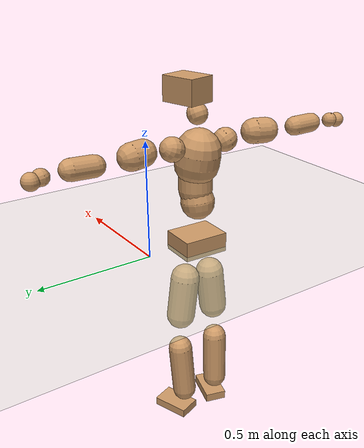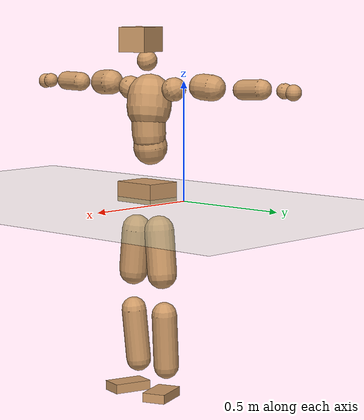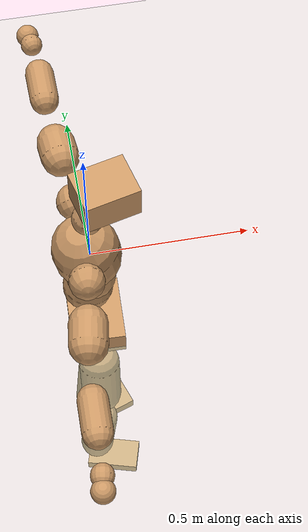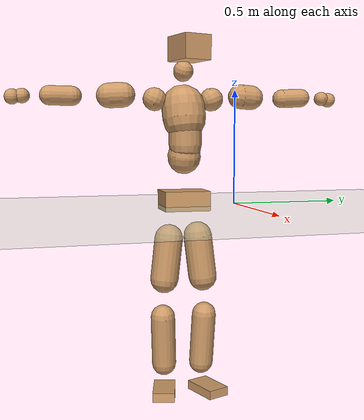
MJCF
<mujoco model="humanoid">
  <compiler coordinate="local" angle="radian"/>
  <default>
    <joint damping="0.0" armature="0.01" stiffness="0.0" limited="true"/>
    <geom conaffinity="1" condim="3" contype="7" margin="0.001" rgba="0.8 0.6 .4 1"/>
  </default>
  <asset>
    <texture type="skybox" builtin="gradient" rgb1=".4 .5 .6" rgb2="0 0 0" width="100" height="100"/>
    <texture builtin="flat" height="1278" mark="cross" markrgb="1 1 1" name="texgeom" random="0.01" rgb1="0.8 0.6 0.4" rgb2="0.8 0.6 0.4" type="cube" width="127"/>
    <texture builtin="checker" height="100" name="texplane" rgb1="0 0 0" rgb2="0.8 0.8 0.8" type="2d" width="100"/>
    <material name="MatPlane" reflectance="0.5" shininess="1" specular="1" texrepeat="60 60" texture="texplane"/>
    <material name="geom" texture="texgeom" texuniform="true"/>
  </asset>
  <worldbody>
    <light cutoff="100" diffuse="1 1 1" dir="-0 0 -1.3" directional="true" exponent="1" pos="0 0 1.3" specular=".1 .1 .1"/>
    <geom conaffinity="1" condim="3" name="floor" pos="0 0 0" rgba="0.8 0.9 0.8 1" size="100 100 .2" type="plane" material="MatPlane"/>
    <body name="Pelvis" pos="-0.0054 -0.2302 0.0285">
      <freejoint name="Pelvis"/>
      <geom type="box" contype="1" conaffinity="1" density="5359.375259" pos="-0.0123 0.0004 -0.0078" size="0.0795 0.1 0.0427" quat="0.9999 0.0000 0.0000 -0.0157" name="Pelvis"/>
      <body name="L_Hip" pos="-0.0198 0.0556 -0.0778">
        <joint name="L_Hip_x" type="hinge" pos="0 0 0" axis="1 0 0" stiffness="1600" damping="160" armature="0.02" range="-180.0000 180.0000"/>
        <joint name="L_Hip_y" type="hinge" pos="0 0 0" axis="0 1 0" stiffness="1600" damping="160" armature="0.02" range="-180.0000 180.0000"/>
        <joint name="L_Hip_z" type="hinge" pos="0 0 0" axis="0 0 1" stiffness="1600" damping="160" armature="0.02" range="-180.0000 180.0000"/>
        <geom type="capsule" contype="1" conaffinity="1" density="2040.816327" size="0.0634" fromto="0.0024 0.0109 -0.0927 0.0074 0.0329 -0.2794" name="L_Hip"/>
        <body name="L_Knee" pos="0.0098 0.0438 -0.3721">
          <joint name="L_Knee_x" type="hinge" pos="0 0 0" axis="1 0 0" stiffness="1600" damping="160" armature="0.02" range="-180.0000 180.0000"/>
          <joint name="L_Knee_y" type="hinge" pos="0 0 0" axis="0 1 0" stiffness="1600" damping="160" armature="0.02" range="-180.0000 180.0000"/>
          <joint name="L_Knee_z" type="hinge" pos="0 0 0" axis="0 0 1" stiffness="1600" damping="160" armature="0.02" range="-180.0000 180.0000"/>
          <geom type="capsule" contype="1" conaffinity="1" density="1234.567901" size="0.0541" fromto="-0.0074 -0.0026 -0.0837 -0.0276 -0.0099 -0.3139" name="L_Knee"/>
          <body name="L_Ankle" pos="-0.0349 -0.0125 -0.3976">
            <joint name="L_Ankle_x" type="hinge" pos="0 0 0" axis="1 0 0" stiffness="1600" damping="160" armature="0.02" range="-180.0000 180.0000"/>
            <joint name="L_Ankle_y" type="hinge" pos="0 0 0" axis="0 1 0" stiffness="1600" damping="160" armature="0.02" range="-180.0000 180.0000"/>
            <joint name="L_Ankle_z" type="hinge" pos="0 0 0" axis="0 0 1" stiffness="1600" damping="160" armature="0.02" range="-180.0000 180.0000"/>
            <geom type="box" contype="1" conaffinity="1" density="999.999994" pos="0.0568 0.0200 -0.0284" size="0.0844 0.0505 0.0197" quat="0.9857 0.0000 0.0000 0.1683" name="L_Ankle"/>
            <body name="L_Toe" pos="0.1135 0.0399 -0.0567">
              <joint name="L_Toe_x" type="hinge" pos="0 0 0" axis="1 0 0" stiffness="1000" damping="100" armature="0.02" range="-180.0000 180.0000"/>
              <joint name="L_Toe_y" type="hinge" pos="0 0 0" axis="0 1 0" stiffness="1000" damping="100" armature="0.02" range="-180.0000 180.0000"/>
              <joint name="L_Toe_z" type="hinge" pos="0 0 0" axis="0 0 1" stiffness="1000" damping="100" armature="0.02" range="-180.0000 180.0000"/>
              <geom type="box" contype="1" conaffinity="1" density="7997871.9691" pos="0.0000 0.0000 0.0276" size="0.001 0.0025 0.0009" quat="0.9849 0.0000 0.0000 0.1732" name="L_Toe"/>
            </body>
          </body>
        </body>
      </body>
      <body name="R_Hip" pos="-0.0156 -0.0574 -0.0849">
        <joint name="R_Hip_x" type="hinge" pos="0 0 0" axis="1 0 0" stiffness="1600" damping="160" armature="0.02" range="-180.0000 180.0000"/>
        <joint name="R_Hip_y" type="hinge" pos="0 0 0" axis="0 1 0" stiffness="1600" damping="160" armature="0.02" range="-180.0000 180.0000"/>
        <joint name="R_Hip_z" type="hinge" pos="0 0 0" axis="0 0 1" stiffness="1600" damping="160" armature="0.02" range="-180.0000 180.0000"/>
        <geom type="capsule" contype="1" conaffinity="1" density="2040.816327" size="0.0624" fromto="-0.0009 -0.0101 -0.0919 -0.0028 -0.0302 -0.2753" name="R_Hip"/>
        <body name="R_Knee" pos="-0.0038 -0.0402 -0.3671">
          <joint name="R_Knee_x" type="hinge" pos="0 0 0" axis="1 0 0" stiffness="1600" damping="160" armature="0.02" range="-180.0000 180.0000"/>
          <joint name="R_Knee_y" type="hinge" pos="0 0 0" axis="0 1 0" stiffness="1600" damping="160" armature="0.02" range="-180.0000 180.0000"/>
          <joint name="R_Knee_z" type="hinge" pos="0 0 0" axis="0 0 1" stiffness="1600" damping="160" armature="0.02" range="-180.0000 180.0000"/>
          <geom type="capsule" contype="1" conaffinity="1" density="1234.567901" size="0.0542" fromto="-0.0071 0.0036 -0.0838 -0.0260 0.0132 -0.3065" name="R_Knee"/>
          <body name="R_Ankle" pos="-0.0331 0.0168 -0.3903">
            <joint name="R_Ankle_x" type="hinge" pos="0 0 0" axis="1 0 0" stiffness="1600" damping="160" armature="0.02" range="-180.0000 180.0000"/>
            <joint name="R_Ankle_y" type="hinge" pos="0 0 0" axis="0 1 0" stiffness="1600" damping="160" armature="0.02" range="-180.0000 180.0000"/>
            <joint name="R_Ankle_z" type="hinge" pos="0 0 0" axis="0 0 1" stiffness="1600" damping="160" armature="0.02" range="-180.0000 180.0000"/>
            <geom type="box" contype="1" conaffinity="1" density="1000.000042" pos="0.0604 -0.0171 -0.0284" size="0.0843 0.0488 0.0202" quat="0.9905 0.0000 0.0000 -0.1377" name="R_Ankle"/>
            <body name="R_Toe" pos="0.1208 -0.0343 -0.0567">
              <joint name="R_Toe_x" type="hinge" pos="0 0 0" axis="1 0 0" stiffness="1000" damping="100" armature="0.02" range="-180.0000 180.0000"/>
              <joint name="R_Toe_y" type="hinge" pos="0 0 0" axis="0 1 0" stiffness="1000" damping="100" armature="0.02" range="-180.0000 180.0000"/>
              <joint name="R_Toe_z" type="hinge" pos="0 0 0" axis="0 0 1" stiffness="1000" damping="100" armature="0.02" range="-180.0000 180.0000"/>
              <geom type="box" contype="1" conaffinity="1" density="8254113.501909" pos="0.0000 0.0000 0.0282" size="0.001 0.0024 0.001" quat="0.9918 0.0000 0.0000 -0.1281" name="R_Toe"/>
            </body>
          </body>
        </body>
      </body>
      <body name="Torso" pos="-0.0382 0.0041 0.1157">
        <joint name="Torso_x" type="hinge" pos="0 0 0" axis="1 0 0" stiffness="2000" damping="200" armature="0.02" range="-180.0000 180.0000"/>
        <joint name="Torso_y" type="hinge" pos="0 0 0" axis="0 1 0" stiffness="2000" damping="200" armature="0.02" range="-180.0000 180.0000"/>
        <joint name="Torso_z" type="hinge" pos="0 0 0" axis="0 0 1" stiffness="2000" damping="200" armature="0.02" range="-180.0000 180.0000"/>
        <geom type="capsule" contype="1" conaffinity="1" density="2040.816327" size="0.0727" fromto="0.0124 0.0024 0.0716 0.0110 0.0021 0.0637" name="Torso"/>
        <body name="Spine" pos="0.0234 0.0045 0.1353">
          <joint name="Spine_x" type="hinge" pos="0 0 0" axis="1 0 0" stiffness="2000" damping="200" armature="0.02" range="-180.0000 180.0000"/>
          <joint name="Spine_y" type="hinge" pos="0 0 0" axis="0 1 0" stiffness="2000" damping="200" armature="0.02" range="-180.0000 180.0000"/>
          <joint name="Spine_z" type="hinge" pos="0 0 0" axis="0 0 1" stiffness="2000" damping="200" armature="0.02" range="-180.0000 180.0000"/>
          <geom type="capsule" contype="1" conaffinity="1" density="2040.816327" size="0.0723" fromto="0.0032 -0.0009 0.0723 -0.0008 0.0002 -0.0174" name="Spine"/>
          <body name="Chest" pos="0.0024 -0.0007 0.0549">
            <joint name="Chest_x" type="hinge" pos="0 0 0" axis="1 0 0" stiffness="2000" damping="200" armature="0.02" range="-180.0000 180.0000"/>
            <joint name="Chest_y" type="hinge" pos="0 0 0" axis="0 1 0" stiffness="2000" damping="200" armature="0.02" range="-180.0000 180.0000"/>
            <joint name="Chest_z" type="hinge" pos="0 0 0" axis="0 0 1" stiffness="2000" damping="200" armature="0.02" range="-180.0000 180.0000"/>
            <geom type="capsule" contype="1" conaffinity="1" density="2040.816327" size="0.0949" fromto="-0.0143 -0.0056 0.0936 -0.0065 -0.0025 0.0425" name="Chest"/>
            <body name="Neck" pos="-0.0268 -0.0139 0.1993">
              <joint name="Neck_x" type="hinge" pos="0 0 0" axis="1 0 0" stiffness="1000" damping="100" armature="0.02" range="-180.0000 180.0000"/>
              <joint name="Neck_y" type="hinge" pos="0 0 0" axis="0 1 0" stiffness="1000" damping="100" armature="0.02" range="-180.0000 180.0000"/>
              <joint name="Neck_z" type="hinge" pos="0 0 0" axis="0 0 1" stiffness="1000" damping="100" armature="0.02" range="-180.0000 180.0000"/>
              <geom type="capsule" contype="1" conaffinity="1" density="1000" size="0.0434" fromto="0.0246 0.0054 0.0440 0.0255 0.0056 0.0457" name="Neck"/>
              <body name="Head" pos="0.0501 0.011 0.0897">
                <joint name="Head_x" type="hinge" pos="0 0 0" axis="1 0 0" stiffness="1000" damping="100" armature="0.02" range="-180.0000 180.0000"/>
                <joint name="Head_y" type="hinge" pos="0 0 0" axis="0 1 0" stiffness="1000" damping="100" armature="0.02" range="-180.0000 180.0000"/>
                <joint name="Head_z" type="hinge" pos="0 0 0" axis="0 0 1" stiffness="1000" damping="100" armature="0.02" range="-180.0000 180.0000"/>
                <geom type="box" contype="1" conaffinity="1" density="2250.000028" pos="0.0260 0.0065 0.0459" size="0.0778 0.0619 0.052" quat="0.9926 0.0000 0.0000 0.1218" name="Head"/>
              </body>
            </body>
            <body name="L_Thorax" pos="-0.0139 0.067 0.1057">
              <joint name="L_Thorax_x" type="hinge" pos="0 0 0" axis="1 0 0" stiffness="1000" damping="100" armature="0.02" range="-180.0000 180.0000"/>
              <joint name="L_Thorax_y" type="hinge" pos="0 0 0" axis="0 1 0" stiffness="1000" damping="100" armature="0.02" range="-180.0000 180.0000"/>
              <joint name="L_Thorax_z" type="hinge" pos="0 0 0" axis="0 0 1" stiffness="1000" damping="100" armature="0.02" range="-180.0000 180.0000"/>
              <geom type="capsule" contype="1" conaffinity="1" density="1000" size="0.0508" fromto="-0.0090 0.0581 0.0205 -0.0093 0.0600 0.0212" name="L_Thorax"/>
              <body name="L_Shoulder" pos="-0.0183 0.118 0.0417">
                <joint name="L_Shoulder_x" type="hinge" pos="0 0 0" axis="1 0 0" stiffness="1000" damping="100" armature="0.02" range="-720.0000 720.0000"/>
                <joint name="L_Shoulder_y" type="hinge" pos="0 0 0" axis="0 1 0" stiffness="1000" damping="100" armature="0.02" range="-720.0000 720.0000"/>
                <joint name="L_Shoulder_z" type="hinge" pos="0 0 0" axis="0 0 1" stiffness="1000" damping="100" armature="0.02" range="-720.0000 720.0000"/>
                <geom type="capsule" contype="1" conaffinity="1" density="1000" size="0.0544" fromto="-0.0087 0.0838 -0.0050 -0.0143 0.1382 -0.0082" name="L_Shoulder"/>
                <body name="L_Elbow" pos="-0.023 0.2219 -0.0132">
                  <joint name="L_Elbow_x" type="hinge" pos="0 0 0" axis="1 0 0" stiffness="1000" damping="100" armature="0.02" range="-720.0000 720.0000"/>
                  <joint name="L_Elbow_y" type="hinge" pos="0 0 0" axis="0 1 0" stiffness="1000" damping="100" armature="0.02" range="-720.0000 720.0000"/>
                  <joint name="L_Elbow_z" type="hinge" pos="0 0 0" axis="0 0 1" stiffness="1000" damping="100" armature="0.02" range="-720.0000 720.0000"/>
                  <geom type="capsule" contype="1" conaffinity="1" density="1000" size="0.0416" fromto="-0.0017 0.0715 0.0035 -0.0039 0.1671 0.0083" name="L_Elbow"/>
                  <body name="L_Wrist" pos="-0.0056 0.2386 0.0118">
                    <joint name="L_Wrist_x" type="hinge" pos="0 0 0" axis="1 0 0" stiffness="600" damping="60" armature="0.02" range="-180.0000 180.0000"/>
                    <joint name="L_Wrist_y" type="hinge" pos="0 0 0" axis="0 1 0" stiffness="600" damping="60" armature="0.02" range="-180.0000 180.0000"/>
                    <joint name="L_Wrist_z" type="hinge" pos="0 0 0" axis="0 0 1" stiffness="600" damping="60" armature="0.02" range="-180.0000 180.0000"/>
                    <geom type="capsule" contype="1" conaffinity="1" density="1000" size="0.0317" fromto="-0.0068 0.0388 -0.0051 -0.0072 0.0408 -0.0053" name="L_Wrist"/>
                    <body name="L_Hand" pos="-0.014 0.0796 -0.0104">
                      <joint name="L_Hand_x" type="hinge" pos="0 0 0" axis="1 0 0" stiffness="600" damping="60" armature="0.02" range="-180.0000 180.0000"/>
                      <joint name="L_Hand_y" type="hinge" pos="0 0 0" axis="0 1 0" stiffness="600" damping="60" armature="0.02" range="-180.0000 180.0000"/>
                      <joint name="L_Hand_z" type="hinge" pos="0 0 0" axis="0 0 1" stiffness="600" damping="60" armature="0.02" range="-180.0000 180.0000"/>
                      <geom type="sphere" contype="1" conaffinity="1" density="1000" size="0.0329" pos="0.0000 0.0000 0.0000" name="L_Hand"/>
                    </body>
                  </body>
                </body>
              </body>
            </body>
            <body name="R_Thorax" pos="-0.0219 -0.0775 0.1035">
              <joint name="R_Thorax_x" type="hinge" pos="0 0 0" axis="1 0 0" stiffness="1000" damping="100" armature="0.02" range="-180.0000 180.0000"/>
              <joint name="R_Thorax_y" type="hinge" pos="0 0 0" axis="0 1 0" stiffness="1000" damping="100" armature="0.02" range="-180.0000 180.0000"/>
              <joint name="R_Thorax_z" type="hinge" pos="0 0 0" axis="0 0 1" stiffness="1000" damping="100" armature="0.02" range="-180.0000 180.0000"/>
              <geom type="capsule" contype="1" conaffinity="1" density="1000" size="0.0502" fromto="-0.0046 -0.0523 0.0209 -0.0047 -0.0542 0.0217" name="R_Thorax"/>
              <body name="R_Shoulder" pos="-0.0093 -0.1065 0.0426">
                <joint name="R_Shoulder_x" type="hinge" pos="0 0 0" axis="1 0 0" stiffness="1000" damping="100" armature="0.02" range="-720.0000 720.0000"/>
                <joint name="R_Shoulder_y" type="hinge" pos="0 0 0" axis="0 1 0" stiffness="1000" damping="100" armature="0.02" range="-720.0000 720.0000"/>
                <joint name="R_Shoulder_z" type="hinge" pos="0 0 0" axis="0 0 1" stiffness="1000" damping="100" armature="0.02" range="-720.0000 720.0000"/>
                <geom type="capsule" contype="1" conaffinity="1" density="1000" size="0.0539" fromto="-0.0120 -0.0829 -0.0042 -0.0205 -0.1418 -0.0071" name="R_Shoulder"/>
                <body name="R_Elbow" pos="-0.0324 -0.2247 -0.0113">
                  <joint name="R_Elbow_x" type="hinge" pos="0 0 0" axis="1 0 0" stiffness="1000" damping="100" armature="0.02" range="-720.0000 720.0000"/>
                  <joint name="R_Elbow_y" type="hinge" pos="0 0 0" axis="0 1 0" stiffness="1000" damping="100" armature="0.02" range="-720.0000 720.0000"/>
                  <joint name="R_Elbow_z" type="hinge" pos="0 0 0" axis="0 0 1" stiffness="1000" damping="100" armature="0.02" range="-720.0000 720.0000"/>
                  <geom type="capsule" contype="1" conaffinity="1" density="1000" size="0.0412" fromto="-0.0012 -0.0712 0.0007 -0.0027 -0.1662 0.0017" name="R_Elbow"/>
                  <body name="R_Wrist" pos="-0.0039 -0.2374 0.0025">
                    <joint name="R_Wrist_x" type="hinge" pos="0 0 0" axis="1 0 0" stiffness="600" damping="60" armature="0.02" range="-180.0000 180.0000"/>
                    <joint name="R_Wrist_y" type="hinge" pos="0 0 0" axis="0 1 0" stiffness="600" damping="60" armature="0.02" range="-180.0000 180.0000"/>
                    <joint name="R_Wrist_z" type="hinge" pos="0 0 0" axis="0 0 1" stiffness="600" damping="60" armature="0.02" range="-180.0000 180.0000"/>
                    <geom type="capsule" contype="1" conaffinity="1" density="1000" size="0.0314" fromto="-0.0044 -0.0388 -0.0039 -0.0047 -0.0407 -0.0040" name="R_Wrist"/>
                    <body name="R_Hand" pos="-0.0091 -0.0795 -0.0079">
                      <joint name="R_Hand_x" type="hinge" pos="0 0 0" axis="1 0 0" stiffness="600" damping="60" armature="0.02" range="-180.0000 180.0000"/>
                      <joint name="R_Hand_y" type="hinge" pos="0 0 0" axis="0 1 0" stiffness="600" damping="60" armature="0.02" range="-180.0000 180.0000"/>
                      <joint name="R_Hand_z" type="hinge" pos="0 0 0" axis="0 0 1" stiffness="600" damping="60" armature="0.02" range="-180.0000 180.0000"/>
                      <geom type="sphere" contype="1" conaffinity="1" density="1000" size="0.0324" pos="0.0000 0.0000 0.0000" name="R_Hand"/>
                    </body>
                  </body>
                </body>
              </body>
            </body>
          </body>
        </body>
      </body>
    </body>
  </worldbody>
  <actuator>
    <motor name="L_Hip_x" joint="L_Hip_x" gear="500"/>
    <motor name="L_Hip_y" joint="L_Hip_y" gear="500"/>
    <motor name="L_Hip_z" joint="L_Hip_z" gear="500"/>
    <motor name="L_Knee_x" joint="L_Knee_x" gear="500"/>
    <motor name="L_Knee_y" joint="L_Knee_y" gear="500"/>
    <motor name="L_Knee_z" joint="L_Knee_z" gear="500"/>
    <motor name="L_Ankle_x" joint="L_Ankle_x" gear="500"/>
    <motor name="L_Ankle_y" joint="L_Ankle_y" gear="500"/>
    <motor name="L_Ankle_z" joint="L_Ankle_z" gear="500"/>
    <motor name="L_Toe_x" joint="L_Toe_x" gear="500"/>
    <motor name="L_Toe_y" joint="L_Toe_y" gear="500"/>
    <motor name="L_Toe_z" joint="L_Toe_z" gear="500"/>
    <motor name="R_Hip_x" joint="R_Hip_x" gear="500"/>
    <motor name="R_Hip_y" joint="R_Hip_y" gear="500"/>
    <motor name="R_Hip_z" joint="R_Hip_z" gear="500"/>
    <motor name="R_Knee_x" joint="R_Knee_x" gear="500"/>
    <motor name="R_Knee_y" joint="R_Knee_y" gear="500"/>
    <motor name="R_Knee_z" joint="R_Knee_z" gear="500"/>
    <motor name="R_Ankle_x" joint="R_Ankle_x" gear="500"/>
    <motor name="R_Ankle_y" joint="R_Ankle_y" gear="500"/>
    <motor name="R_Ankle_z" joint="R_Ankle_z" gear="500"/>
    <motor name="R_Toe_x" joint="R_Toe_x" gear="500"/>
    <motor name="R_Toe_y" joint="R_Toe_y" gear="500"/>
    <motor name="R_Toe_z" joint="R_Toe_z" gear="500"/>
    <motor name="Torso_x" joint="Torso_x" gear="500"/>
    <motor name="Torso_y" joint="Torso_y" gear="500"/>
    <motor name="Torso_z" joint="Torso_z" gear="500"/>
    <motor name="Spine_x" joint="Spine_x" gear="500"/>
    <motor name="Spine_y" joint="Spine_y" gear="500"/>
    <motor name="Spine_z" joint="Spine_z" gear="500"/>
    <motor name="Chest_x" joint="Chest_x" gear="500"/>
    <motor name="Chest_y" joint="Chest_y" gear="500"/>
    <motor name="Chest_z" joint="Chest_z" gear="500"/>
    <motor name="Neck_x" joint="Neck_x" gear="500"/>
    <motor name="Neck_y" joint="Neck_y" gear="500"/>
    <motor name="Neck_z" joint="Neck_z" gear="500"/>
    <motor name="Head_x" joint="Head_x" gear="500"/>
    <motor name="Head_y" joint="Head_y" gear="500"/>
    <motor name="Head_z" joint="Head_z" gear="500"/>
    <motor name="L_Thorax_x" joint="L_Thorax_x" gear="500"/>
    <motor name="L_Thorax_y" joint="L_Thorax_y" gear="500"/>
    <motor name="L_Thorax_z" joint="L_Thorax_z" gear="500"/>
    <motor name="L_Shoulder_x" joint="L_Shoulder_x" gear="500"/>
    <motor name="L_Shoulder_y" joint="L_Shoulder_y" gear="500"/>
    <motor name="L_Shoulder_z" joint="L_Shoulder_z" gear="500"/>
    <motor name="L_Elbow_x" joint="L_Elbow_x" gear="500"/>
    <motor name="L_Elbow_y" joint="L_Elbow_y" gear="500"/>
    <motor name="L_Elbow_z" joint="L_Elbow_z" gear="500"/>
    <motor name="L_Wrist_x" joint="L_Wrist_x" gear="500"/>
    <motor name="L_Wrist_y" joint="L_Wrist_y" gear="500"/>
    <motor name="L_Wrist_z" joint="L_Wrist_z" gear="500"/>
    <motor name="L_Hand_x" joint="L_Hand_x" gear="500"/>
    <motor name="L_Hand_y" joint="L_Hand_y" gear="500"/>
    <motor name="L_Hand_z" joint="L_Hand_z" gear="500"/>
    <motor name="R_Thorax_x" joint="R_Thorax_x" gear="500"/>
    <motor name="R_Thorax_y" joint="R_Thorax_y" gear="500"/>
    <motor name="R_Thorax_z" joint="R_Thorax_z" gear="500"/>
    <motor name="R_Shoulder_x" joint="R_Shoulder_x" gear="500"/>
    <motor name="R_Shoulder_y" joint="R_Shoulder_y" gear="500"/>
    <motor name="R_Shoulder_z" joint="R_Shoulder_z" gear="500"/>
    <motor name="R_Elbow_x" joint="R_Elbow_x" gear="500"/>
    <motor name="R_Elbow_y" joint="R_Elbow_y" gear="500"/>
    <motor name="R_Elbow_z" joint="R_Elbow_z" gear="500"/>
    <motor name="R_Wrist_x" joint="R_Wrist_x" gear="500"/>
    <motor name="R_Wrist_y" joint="R_Wrist_y" gear="500"/>
    <motor name="R_Wrist_z" joint="R_Wrist_z" gear="500"/>
    <motor name="R_Hand_x" joint="R_Hand_x" gear="500"/>
    <motor name="R_Hand_y" joint="R_Hand_y" gear="500"/>
    <motor name="R_Hand_z" joint="R_Hand_z" gear="500"/>
  </actuator>
  <contact>
    <exclude body1="Torso" body2="Chest"/>
    <exclude body1="Head" body2="Chest"/>
    <exclude body1="R_Knee" body2="R_Toe"/>
    <exclude body1="R_Knee" body2="L_Ankle"/>
    <exclude body1="R_Knee" body2="L_Toe"/>
    <exclude body1="L_Knee" body2="L_Toe"/>
    <exclude body1="L_Knee" body2="R_Ankle"/>
    <exclude body1="L_Knee" body2="R_Toe"/>
    <exclude body1="L_Shoulder" body2="Chest"/>
    <exclude body1="R_Shoulder" body2="Chest"/>
  </contact>
  <sensor/>
  <size njmax="700" nconmax="700"/>
</mujoco>
